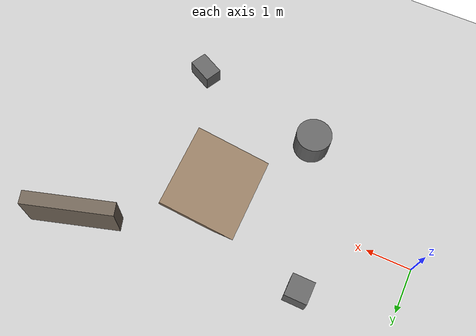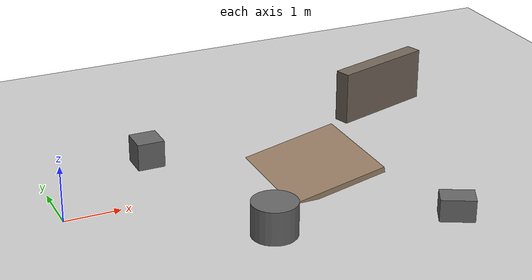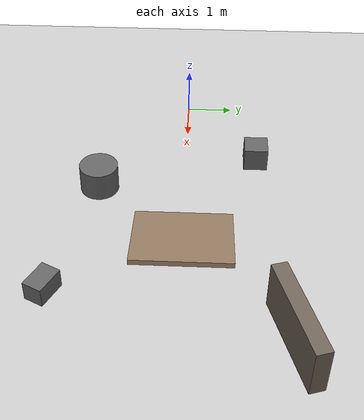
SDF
<?xml version="1.0" ?>
<sdf version="1.6">
  <world name="rover_test_terrain">

    <!-- Physics: real-time capable defaults -->
    <physics name="default_physics" default="true" type="ode">
      <max_step_size>0.004</max_step_size>
      <real_time_factor>1.0</real_time_factor>
      <real_time_update_rate>250</real_time_update_rate>
    </physics>

    <scene>
      <ambient>0.4 0.4 0.4 1</ambient>
      <background>0.7 0.7 0.8 1</background>
      <shadows>false</shadows>
    </scene>

    <include>
      <uri>model://sun</uri>
    </include>

    <include>
      <uri>model://ground_plane</uri>
    </include>

    <!-- ===================== Ramp for slope testing ===================== -->
    <model name="ramp">
      <static>true</static>
      <pose>4.0 0 0.0 0 -0.20 0</pose>
      <link name="link">
        <collision name="collision">
          <geometry>
            <box><size>3.0 2.0 0.1</size></box>
          </geometry>
          <surface>
            <friction><ode><mu>1.0</mu><mu2>1.0</mu2></ode></friction>
          </surface>
        </collision>
        <visual name="visual">
          <geometry>
            <box><size>3.0 2.0 0.1</size></box>
          </geometry>
          <material><ambient>0.5 0.4 0.3 1</ambient><diffuse>0.6 0.5 0.4 1</diffuse></material>
        </visual>
      </link>
    </model>

    <!-- ===================== Obstacles ===================== -->
    <model name="rock_1">
      <static>true</static>
      <pose>2.0 1.5 0.25 0 0 0</pose>
      <link name="link">
        <collision name="collision"><geometry><box><size>0.5 0.5 0.5</size></box></geometry></collision>
        <visual name="visual">
          <geometry><box><size>0.5 0.5 0.5</size></box></geometry>
          <material><ambient>0.3 0.3 0.3 1</ambient><diffuse>0.4 0.4 0.4 1</diffuse></material>
        </visual>
      </link>
    </model>

    <model name="rock_2">
      <static>true</static>
      <pose>3.0 -1.8 0.3 0 0 0.5</pose>
      <link name="link">
        <collision name="collision"><geometry><cylinder><radius>0.4</radius><length>0.6</length></cylinder></geometry></collision>
        <visual name="visual">
          <geometry><cylinder><radius>0.4</radius><length>0.6</length></cylinder></geometry>
          <material><ambient>0.3 0.3 0.3 1</ambient><diffuse>0.4 0.4 0.4 1</diffuse></material>
        </visual>
      </link>
    </model>

    <model name="wall_1">
      <static>true</static>
      <pose>7.0 2.0 0.5 0 0 0.3</pose>
      <link name="link">
        <collision name="collision"><geometry><box><size>2.0 0.3 1.0</size></box></geometry></collision>
        <visual name="visual">
          <geometry><box><size>2.0 0.3 1.0</size></box></geometry>
          <material><ambient>0.35 0.3 0.25 1</ambient><diffuse>0.45 0.4 0.35 1</diffuse></material>
        </visual>
      </link>
    </model>

    <model name="rock_field_3">
      <static>true</static>
      <pose>6.0 -2.5 0.2 0 0 1.1</pose>
      <link name="link">
        <collision name="collision"><geometry><box><size>0.4 0.6 0.4</size></box></geometry></collision>
        <visual name="visual">
          <geometry><box><size>0.4 0.6 0.4</size></box></geometry>
          <material><ambient>0.3 0.3 0.3 1</ambient><diffuse>0.4 0.4 0.4 1</diffuse></material>
        </visual>
      </link>
    </model>

  </world>
</sdf>
